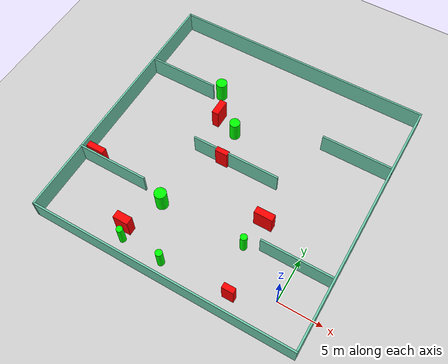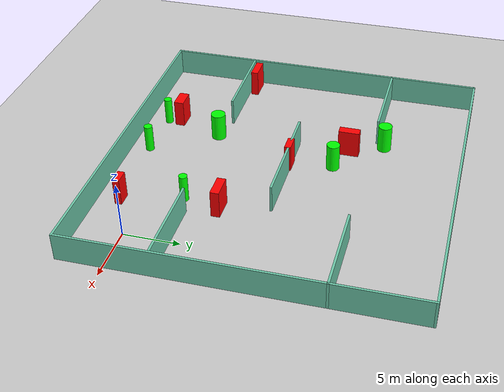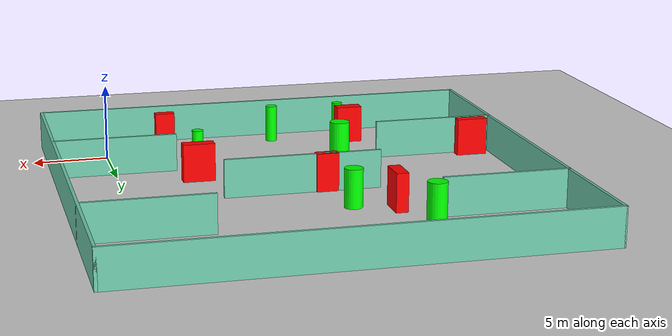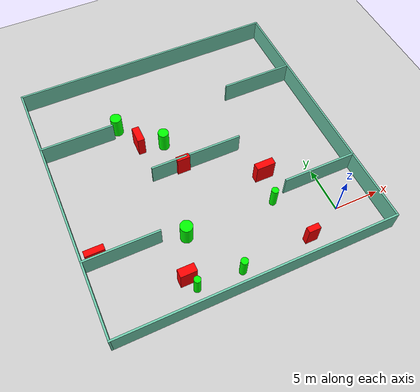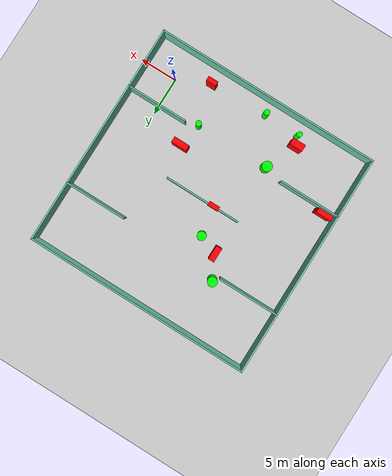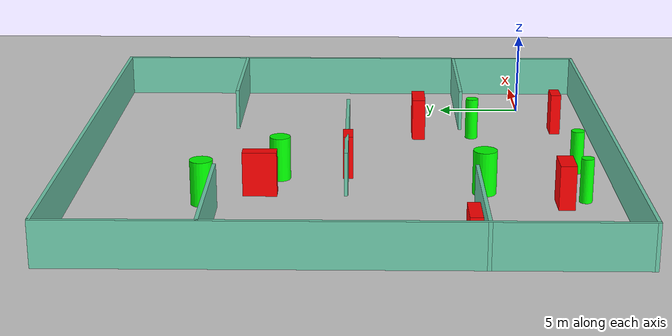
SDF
<sdf version="1.7">
 <world name="default">
  <light name="sun" type="directional">
   <pose>0 0 10 0 -0 0</pose>
   <diffuse>0.8 0.8 0.8 1</diffuse>
   <specular>0.2 0.2 0.2 1</specular>
   <attenuation>
    <range>1000</range>
    <constant>0.9</constant>
    <linear>0.01</linear>
    <quadratic>0.001</quadratic>
   </attenuation>
   <direction>-0.5 0.1 -0.9</direction>
   <spot><inner_angle>0</inner_angle><outer_angle>0</outer_angle><falloff>0</falloff></spot>
  </light>
  <model name="ground_plane">
   <static>1</static>
   <link name="link">
    <collision name="collision">
     <geometry><plane><normal>0 0 1</normal><size>100 100</size></plane></geometry>
     <surface>
      <contact><collide_bitmask>65535</collide_bitmask></contact>
      <friction><ode><mu>100</mu><mu2>50</mu2></ode></friction>
     </surface>
    </collision>
    <visual name="visual">
     <cast_shadows>0</cast_shadows>
     <geometry><plane><normal>0 0 1</normal><size>100 100</size></plane></geometry>
     <material>
      <script><uri>file://media/materials/scripts/gazebo.material</uri><name>Gazebo/Grey</name></script>
     </material>
    </visual>
   </link>
  </model>
  <gravity>0 0 -9.8</gravity>
  <magnetic_field>6e-06 2.3e-05 -4.2e-05</magnetic_field>
  <atmosphere type="adiabatic"/>
  <physics type="ode">
   <max_step_size>0.001</max_step_size>
   <real_time_factor>1</real_time_factor>
   <real_time_update_rate>1000</real_time_update_rate>
  </physics>
  <scene><ambient>0.4 0.4 0.4 1</ambient><background>0.7 0.7 0.7 1</background><shadows>1</shadows></scene>
  <spherical_coordinates>
   <surface_model>EARTH_WGS84</surface_model>
   <latitude_deg>0</latitude_deg>
   <longitude_deg>0</longitude_deg>
   <elevation>0</elevation>
   <heading_deg>0</heading_deg>
  </spherical_coordinates>
  <model name="my_base_walls">
   <link name="Wall_10">
    <collision name="Wall_10_Collision">
     <geometry><box><size>8.2 0.2 2.5</size></box></geometry>
     <pose>0 0 1.25 0 -0 0</pose>
    </collision>
    <visual name="Wall_10_Visual">
     <pose>0 0 1.25 0 -0 0</pose>
     <geometry><box><size>8.2 0.2 2.5</size></box></geometry>
     <material>
      <script><uri>file://media/materials/scripts/gazebo.material</uri><name>Gazebo/Grey</name></script>
      <ambient>0.435294 0.796078 0.67451 1</ambient>
     </material>
     <meta><layer>0</layer></meta>
    </visual>
    <pose>-11 -7 0 0 -0 0</pose>
   </link>
   <link name="Wall_12">
    <collision name="Wall_12_Collision">
     <geometry><box><size>8.2 0.2 2.5</size></box></geometry>
     <pose>0 0 1.25 0 -0 0</pose>
    </collision>
    <visual name="Wall_12_Visual">
     <pose>0 0 1.25 0 -0 0</pose>
     <geometry><box><size>8.2 0.2 2.5</size></box></geometry>
     <material>
      <script><uri>file://media/materials/scripts/gazebo.material</uri><name>Gazebo/Grey</name></script>
      <ambient>0.435294 0.796078 0.67451 1</ambient>
     </material>
     <meta><layer>0</layer></meta>
    </visual>
    <pose>-11 7 0 0 -0 0</pose>
   </link>
   <link name="Wall_14">
    <collision name="Wall_14_Collision">
     <geometry><box><size>8.2 0.2 2.5</size></box></geometry>
     <pose>0 0 1.25 0 -0 0</pose>
    </collision>
    <visual name="Wall_14_Visual">
     <pose>0 0 1.25 0 -0 0</pose>
     <geometry><box><size>8.2 0.2 2.5</size></box></geometry>
     <material>
      <script><uri>file://media/materials/scripts/gazebo.material</uri><name>Gazebo/Grey</name></script>
      <ambient>0.435294 0.796078 0.67451 1</ambient>
     </material>
     <meta><layer>0</layer></meta>
    </visual>
    <pose>11 7 0 0 -0 3.14159</pose>
   </link>
   <link name="Wall_16">
    <collision name="Wall_16_Collision">
     <geometry><box><size>10.2 0.2 2.5</size></box></geometry>
     <pose>0 0 1.25 0 -0 0</pose>
    </collision>
    <visual name="Wall_16_Visual">
     <pose>0 0 1.25 0 -0 0</pose>
     <geometry><box><size>10.2 0.2 2.5</size></box></geometry>
     <material>
      <script><uri>file://media/materials/scripts/gazebo.material</uri><name>Gazebo/Grey</name></script>
      <ambient>0.435294 0.796078 0.67451 1</ambient>
     </material>
     <meta><layer>0</layer></meta>
    </visual>
    <pose>0 0 0 0 -0 3.14159</pose>
   </link>
   <link name="Wall_2">
    <collision name="Wall_2_Collision">
     <geometry><box><size>30.2 0.2 2.5</size></box></geometry>
     <pose>0 0 1.25 0 -0 0</pose>
    </collision>
    <visual name="Wall_2_Visual">
     <pose>0 0 1.25 0 -0 0</pose>
     <geometry><box><size>30.2 0.2 2.5</size></box></geometry>
     <material>
      <script><uri>file://media/materials/scripts/gazebo.material</uri><name>Gazebo/Grey</name></script>
      <ambient>0.435294 0.796078 0.67451 1</ambient>
     </material>
     <meta><layer>0</layer></meta>
    </visual>
    <pose>0 -15 0 0 -0 3.14159</pose>
   </link>
   <link name="Wall_3">
    <collision name="Wall_3_Collision">
     <geometry><box><size>30.2 0.2 2.5</size></box></geometry>
     <pose>0 0 1.25 0 -0 0</pose>
    </collision>
    <visual name="Wall_3_Visual">
     <pose>0 0 1.25 0 -0 0</pose>
     <geometry><box><size>30.2 0.2 2.5</size></box></geometry>
     <material>
      <script><uri>file://media/materials/scripts/gazebo.material</uri><name>Gazebo/Grey</name></script>
      <ambient>0.435294 0.796078 0.67451 1</ambient>
     </material>
     <meta><layer>0</layer></meta>
    </visual>
    <pose>-15 0 0 0 -0 1.5708</pose>
   </link>
   <link name="Wall_4">
    <collision name="Wall_4_Collision">
     <geometry><box><size>30.2 0.2 2.5</size></box></geometry>
     <pose>0 0 1.25 0 -0 0</pose>
    </collision>
    <visual name="Wall_4_Visual">
     <pose>0 0 1.25 0 -0 0</pose>
     <geometry><box><size>30.2 0.2 2.5</size></box></geometry>
     <material>
      <script><uri>file://media/materials/scripts/gazebo.material</uri><name>Gazebo/Grey</name></script>
      <ambient>0.435294 0.796078 0.67451 1</ambient>
     </material>
     <meta><layer>0</layer></meta>
    </visual>
    <pose>0 15 0 0 -0 0</pose>
   </link>
   <link name="Wall_6">
    <collision name="Wall_6_Collision">
     <geometry><box><size>30.2 0.2 2.5</size></box></geometry>
     <pose>0 0 1.25 0 -0 0</pose>
    </collision>
    <visual name="Wall_6_Visual">
     <pose>0 0 1.25 0 -0 0</pose>
     <geometry><box><size>30.2 0.2 2.5</size></box></geometry>
     <material>
      <script><uri>file://media/materials/scripts/gazebo.material</uri><name>Gazebo/Grey</name></script>
      <ambient>0.435294 0.796078 0.67451 1</ambient>
     </material>
     <meta><layer>0</layer></meta>
    </visual>
    <pose>15 0 0 0 -0 1.5708</pose>
   </link>
   <link name="Wall_8">
    <collision name="Wall_8_Collision">
     <geometry><box><size>8.2 0.2 2.5</size></box></geometry>
     <pose>0 0 1.25 0 -0 0</pose>
    </collision>
    <visual name="Wall_8_Visual">
     <pose>0 0 1.25 0 -0 0</pose>
     <geometry><box><size>8.2 0.2 2.5</size></box></geometry>
     <material>
      <script><uri>file://media/materials/scripts/gazebo.material</uri><name>Gazebo/Grey</name></script>
      <ambient>0.435294 0.796078 0.67451 1</ambient>
     </material>
     <meta><layer>0</layer></meta>
    </visual>
    <pose>11 -7 0 0 -0 3.14159</pose>
   </link>
   <static>1</static>
   <pose>-11 11 0 0 -0 0</pose>
  </model>
  <model name="cylinder1">
   <static>1</static>
   <link name="link">
    <inertial>
     <mass>1</mass>
     <inertia><ixx>0.5</ixx><ixy>0</ixy><ixz>0</ixz><iyy>0.5</iyy><iyz>0</iyz><izz>1</izz></inertia>
    </inertial>
    <collision name="collision">
     <geometry><cylinder><radius>0.3554604019836326</radius><length>2.5</length></cylinder></geometry>
    </collision>
    <visual name="visual">
     <geometry><cylinder><radius>0.3554604019836326</radius><length>2.5</length></cylinder></geometry>
     <material>
      <ambient>0 1 0 1</ambient>
      <diffuse>0 1 0 1</diffuse>
      <specular>0.1 0.1 0.1 1</specular>
      <emissive>0 0 0 0</emissive>
     </material>
    </visual>
   </link>
   <pose>-16.751912381152394 -2.028168608293335 1.25 0 0 0</pose>
  </model>
  <model name="cylinder2">
   <static>1</static>
   <link name="link">
    <inertial>
     <mass>1</mass>
     <inertia><ixx>0.5</ixx><ixy>0</ixy><ixz>0</ixz><iyy>0.5</iyy><iyz>0</iyz><izz>1</izz></inertia>
    </inertial>
    <collision name="collision">
     <geometry><cylinder><radius>0.37467962516406916</radius><length>2.5</length></cylinder></geometry>
    </collision>
    <visual name="visual">
     <geometry><cylinder><radius>0.37467962516406916</radius><length>2.5</length></cylinder></geometry>
     <material>
      <ambient>0 1 0 1</ambient>
      <diffuse>0 1 0 1</diffuse>
      <specular>0.1 0.1 0.1 1</specular>
      <emissive>0 0 0 0</emissive>
     </material>
    </visual>
   </link>
   <pose>-5.6477244855955995 3.394385340134641 1.25 0 0 0</pose>
  </model>
  <model name="cylinder3">
   <static>1</static>
   <link name="link">
    <inertial>
     <mass>1</mass>
     <inertia><ixx>0.5</ixx><ixy>0</ixy><ixz>0</ixz><iyy>0.5</iyy><iyz>0</iyz><izz>1</izz></inertia>
    </inertial>
    <collision name="collision">
     <geometry><cylinder><radius>0.5872226397094193</radius><length>2.5</length></cylinder></geometry>
    </collision>
    <visual name="visual">
     <geometry><cylinder><radius>0.5872226397094193</radius><length>2.5</length></cylinder></geometry>
     <material>
      <ambient>0 1 0 1</ambient>
      <diffuse>0 1 0 1</diffuse>
      <specular>0.1 0.1 0.1 1</specular>
      <emissive>0 0 0 0</emissive>
     </material>
    </visual>
   </link>
   <pose>-13.247746683461196 14.763127576343884 1.25 0 0 0</pose>
  </model>
  <model name="cylinder4">
   <static>1</static>
   <link name="link">
    <inertial>
     <mass>1</mass>
     <inertia><ixx>0.5</ixx><ixy>0</ixy><ixz>0</ixz><iyy>0.5</iyy><iyz>0</iyz><izz>1</izz></inertia>
    </inertial>
    <collision name="collision">
     <geometry><cylinder><radius>0.6644979677861627</radius><length>2.5</length></cylinder></geometry>
    </collision>
    <visual name="visual">
     <geometry><cylinder><radius>0.6644979677861627</radius><length>2.5</length></cylinder></geometry>
     <material>
      <ambient>0 1 0 1</ambient>
      <diffuse>0 1 0 1</diffuse>
      <specular>0.1 0.1 0.1 1</specular>
      <emissive>0 0 0 0</emissive>
     </material>
    </visual>
   </link>
   <pose>-15.486745129988716 3.3778004607739582 1.25 0 0 0</pose>
  </model>
  <model name="cylinder5">
   <static>1</static>
   <link name="link">
    <inertial>
     <mass>1</mass>
     <inertia><ixx>0.5</ixx><ixy>0</ixy><ixz>0</ixz><iyy>0.5</iyy><iyz>0</iyz><izz>1</izz></inertia>
    </inertial>
    <collision name="collision">
     <geometry><cylinder><radius>0.6268013273099491</radius><length>2.5</length></cylinder></geometry>
    </collision>
    <visual name="visual">
     <geometry><cylinder><radius>0.6268013273099491</radius><length>2.5</length></cylinder></geometry>
     <material>
      <ambient>0 1 0 1</ambient>
      <diffuse>0 1 0 1</diffuse>
      <specular>0.1 0.1 0.1 1</specular>
      <emissive>0 0 0 0</emissive>
     </material>
    </visual>
   </link>
   <pose>-17.29678170805904 18.76212151076674 1.25 0 0 0</pose>
  </model>
  <model name="cylinder6">
   <static>1</static>
   <link name="link">
    <inertial>
     <mass>1</mass>
     <inertia><ixx>0.5</ixx><ixy>0</ixy><ixz>0</ixz><iyy>0.5</iyy><iyz>0</iyz><izz>1</izz></inertia>
    </inertial>
    <collision name="collision">
     <geometry><cylinder><radius>0.3819504557674568</radius><length>2.5</length></cylinder></geometry>
    </collision>
    <visual name="visual">
     <geometry><cylinder><radius>0.3819504557674568</radius><length>2.5</length></cylinder></geometry>
     <material>
      <ambient>0 1 0 1</ambient>
      <diffuse>0 1 0 1</diffuse>
      <specular>0.1 0.1 0.1 1</specular>
      <emissive>0 0 0 0</emissive>
     </material>
    </visual>
   </link>
   <pose>-11.976023573339472 -2.191113855876524 1.25 0 0 0</pose>
  </model>
  <model name="box1">
   <static>1</static>
   <link name="link">
    <inertial>
     <mass>1</mass>
     <inertia><ixx>0.083</ixx><ixy>0</ixy><ixz>0</ixz><iyy>0.083</iyy><iyz>0</iyz><izz>0.083</izz></inertia>
    </inertial>
    <collision name="collision">
     <geometry><box><size>0.7858293664653244 1.8879974093900675 2.5</size></box></geometry>
    </collision>
    <visual name="visual">
     <geometry><box><size>0.7858293664653244 1.8879974093900675 2.5</size></box></geometry>
     <material>
      <ambient>1 0 0 1</ambient>
      <diffuse>1 0 0 1</diffuse>
      <specular>0.1 0.1 0.1 1</specular>
      <emissive>0 0 0 0</emissive>
     </material>
    </visual>
    <sensor name="my_contact" type="contact">
     <contact><collision>box_collision</collision><topic>__default_topic__</topic></contact>
    </sensor>
   </link>
   <pose>-15.798315022920075 15.727030084947742 1.25 0 0 0</pose>
  </model>
  <model name="box2">
   <static>1</static>
   <link name="link">
    <inertial>
     <mass>1</mass>
     <inertia><ixx>0.083</ixx><ixy>0</ixy><ixz>0</ixz><iyy>0.083</iyy><iyz>0</iyz><izz>0.083</izz></inertia>
    </inertial>
    <collision name="collision">
     <geometry><box><size>1.4381364873632851 0.5755662167837894 2.5</size></box></geometry>
    </collision>
    <visual name="visual">
     <geometry><box><size>1.4381364873632851 0.5755662167837894 2.5</size></box></geometry>
     <material>
      <ambient>1 0 0 1</ambient>
      <diffuse>1 0 0 1</diffuse>
      <specular>0.1 0.1 0.1 1</specular>
      <emissive>0 0 0 0</emissive>
     </material>
    </visual>
    <sensor name="my_contact" type="contact">
     <contact><collision>box_collision</collision><topic>__default_topic__</topic></contact>
    </sensor>
   </link>
   <pose>-12.573994941726866 10.929798047479647 1.25 0 0 0</pose>
  </model>
  <model name="box3">
   <static>1</static>
   <link name="link">
    <inertial>
     <mass>1</mass>
     <inertia><ixx>0.083</ixx><ixy>0</ixy><ixz>0</ixz><iyy>0.083</iyy><iyz>0</iyz><izz>0.083</izz></inertia>
    </inertial>
    <collision name="collision">
     <geometry><box><size>1.739462437170355 0.889828009873398 2.5</size></box></geometry>
    </collision>
    <visual name="visual">
     <geometry><box><size>1.739462437170355 0.889828009873398 2.5</size></box></geometry>
     <material>
      <ambient>1 0 0 1</ambient>
      <diffuse>1 0 0 1</diffuse>
      <specular>0.1 0.1 0.1 1</specular>
      <emissive>0 0 0 0</emissive>
     </material>
    </visual>
    <sensor name="my_contact" type="contact">
     <contact><collision>box_collision</collision><topic>__default_topic__</topic></contact>
    </sensor>
   </link>
   <pose>-17.242769600730664 -0.8279465544638587 1.25 0 0 0</pose>
  </model>
  <model name="box4">
   <static>1</static>
   <link name="link">
    <inertial>
     <mass>1</mass>
     <inertia><ixx>0.083</ixx><ixy>0</ixy><ixz>0</ixz><iyy>0.083</iyy><iyz>0</iyz><izz>0.083</izz></inertia>
    </inertial>
    <collision name="collision">
     <geometry><box><size>2.0512342932005856 0.6631358725531276 2.5</size></box></geometry>
    </collision>
    <visual name="visual">
     <geometry><box><size>2.0512342932005856 0.6631358725531276 2.5</size></box></geometry>
     <material>
      <ambient>1 0 0 1</ambient>
      <diffuse>1 0 0 1</diffuse>
      <specular>0.1 0.1 0.1 1</specular>
      <emissive>0 0 0 0</emissive>
     </material>
    </visual>
    <sensor name="my_contact" type="contact">
     <contact><collision>box_collision</collision><topic>__default_topic__</topic></contact>
    </sensor>
   </link>
   <pose>-24.500389160093313 4.614276328904721 1.25 0 0 0</pose>
  </model>
  <model name="box5">
   <static>1</static>
   <link name="link">
    <inertial>
     <mass>1</mass>
     <inertia><ixx>0.083</ixx><ixy>0</ixy><ixz>0</ixz><iyy>0.083</iyy><iyz>0</iyz><izz>0.083</izz></inertia>
    </inertial>
    <collision name="collision">
     <geometry><box><size>1.3099192882806974 0.615497471050238 2.5</size></box></geometry>
    </collision>
    <visual name="visual">
     <geometry><box><size>1.3099192882806974 0.615497471050238 2.5</size></box></geometry>
     <material>
      <ambient>1 0 0 1</ambient>
      <diffuse>1 0 0 1</diffuse>
      <specular>0.1 0.1 0.1 1</specular>
      <emissive>0 0 0 0</emissive>
     </material>
    </visual>
    <sensor name="my_contact" type="contact">
     <contact><collision>box_collision</collision><topic>__default_topic__</topic></contact>
    </sensor>
   </link>
   <pose>-4.275571324524908 -1.869454412027356 1.25 0 0 0</pose>
  </model>
  <model name="box6">
   <static>1</static>
   <link name="link">
    <inertial>
     <mass>1</mass>
     <inertia><ixx>0.083</ixx><ixy>0</ixy><ixz>0</ixz><iyy>0.083</iyy><iyz>0</iyz><izz>0.083</izz></inertia>
    </inertial>
    <collision name="collision">
     <geometry><box><size>2.091158798431435 0.7778138600197742 2.5</size></box></geometry>
    </collision>
    <visual name="visual">
     <geometry><box><size>2.091158798431435 0.7778138600197742 2.5</size></box></geometry>
     <material>
      <ambient>1 0 0 1</ambient>
      <diffuse>1 0 0 1</diffuse>
      <specular>0.1 0.1 0.1 1</specular>
      <emissive>0 0 0 0</emissive>
     </material>
    </visual>
    <sensor name="my_contact" type="contact">
     <contact><collision>box_collision</collision><topic>__default_topic__</topic></contact>
    </sensor>
   </link>
   <pose>-5.079960910902269 6.673466220884446 1.25 0 0 0</pose>
  </model>
 </world>
</sdf>
